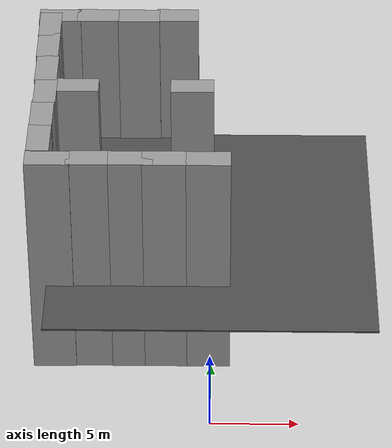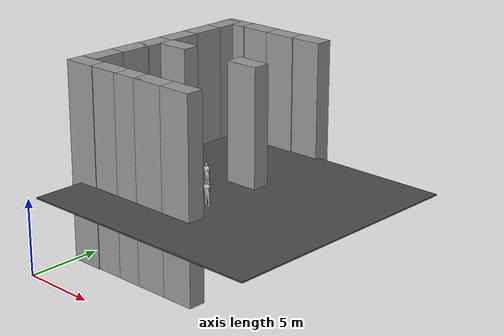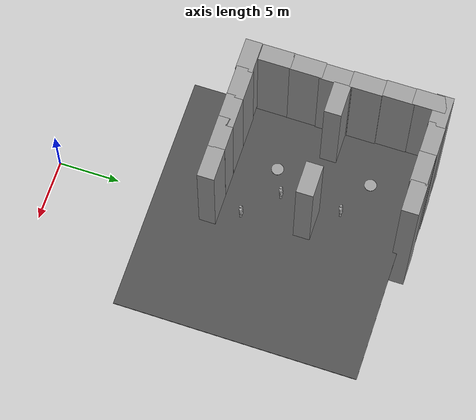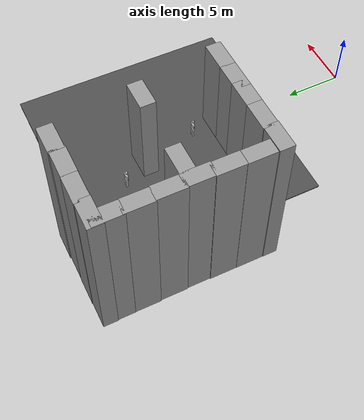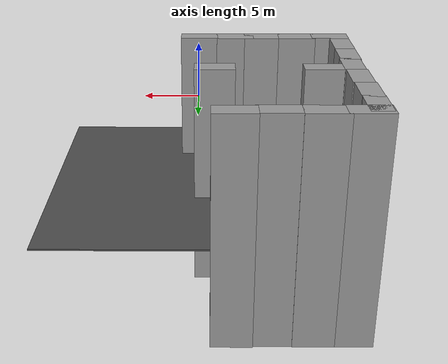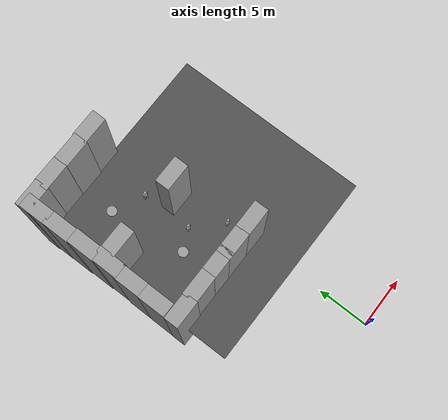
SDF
<sdf version="1.6">
 <model name="indoor_2">
  <link name="link_0_clone_2_clone_1_clone">
   <pose>-4.81876 16.9154 0.5 0 -0 0</pose>
   <inertial>
    <mass>0.0318769</mass>
    <inertia>
     <ixx>0.00199501</ixx>
     <ixy>0</ixy>
     <ixz>0</ixz>
     <iyy>0.00199501</iyy>
     <iyz>0</iyz>
     <izz>0.00398461</izz>
    </inertia>
   </inertial>
   <visual name="visual">
    <geometry><cylinder><radius>0.5</radius><length>0.0318771</length></cylinder></geometry>
    <material>
     <lighting>1</lighting>
     <script><uri>file://media/materials/scripts/gazebo.material</uri><name>Gazebo/Grey</name></script>
     <ambient>0.3 0.3 0.3 1</ambient>
     <diffuse>0.7 0.7 0.7 1</diffuse>
     <specular>0.01 0.01 0.01 1</specular>
     <emissive>0 0 0 1</emissive>
     <shader type="pixel"/>
    </material>
   </visual>
   <collision name="collision">
    <geometry><cylinder><radius>0.5</radius><length>0.031877</length></cylinder></geometry>
    <surface>
     <friction>
      <ode><mu>1</mu><mu2>1</mu2><fdir1>0 0 0</fdir1><slip1>0</slip1><slip2>0</slip2></ode>
      <torsional>
       <coefficient>1</coefficient>
       <patch_radius>0</patch_radius>
       <surface_radius>0</surface_radius>
       <use_patch_radius>1</use_patch_radius>
       <ode><slip>0</slip></ode>
      </torsional>
     </friction>
     <bounce><restitution_coefficient>0</restitution_coefficient><threshold>1e+06</threshold></bounce>
     <contact>
      <collide_without_contact>0</collide_without_contact>
      <collide_without_contact_bitmask>1</collide_without_contact_bitmask>
      <collide_bitmask>1</collide_bitmask>
      <ode>
       <soft_cfm>0</soft_cfm>
       <soft_erp>0.2</soft_erp>
       <kp>1e+13</kp>
       <kd>1</kd>
       <max_vel>0.01</max_vel>
       <min_depth>0</min_depth>
      </ode>
      <bullet>
       <split_impulse>1</split_impulse>
       <split_impulse_penetration_threshold>-0.01</split_impulse_penetration_threshold>
       <soft_cfm>0</soft_cfm>
       <soft_erp>0.2</soft_erp>
       <kp>1e+13</kp>
       <kd>1</kd>
      </bullet>
     </contact>
    </surface>
   </collision>
  </link>
  <link name="link_0_clone_2_clone_3_clone">
   <pose>-5.81876 24.4307 0.5 0 -0 0</pose>
   <inertial>
    <mass>0.0318769</mass>
    <inertia>
     <ixx>0.00199501</ixx>
     <ixy>0</ixy>
     <ixz>0</ixz>
     <iyy>0.00199501</iyy>
     <iyz>0</iyz>
     <izz>0.00398461</izz>
    </inertia>
   </inertial>
   <visual name="visual">
    <geometry><cylinder><radius>0.5</radius><length>0.0318771</length></cylinder></geometry>
    <material>
     <lighting>1</lighting>
     <script><uri>file://media/materials/scripts/gazebo.material</uri><name>Gazebo/Grey</name></script>
     <ambient>0.3 0.3 0.3 1</ambient>
     <diffuse>0.7 0.7 0.7 1</diffuse>
     <specular>0.01 0.01 0.01 1</specular>
     <emissive>0 0 0 1</emissive>
     <shader type="pixel"/>
    </material>
   </visual>
   <collision name="collision">
    <geometry><cylinder><radius>0.5</radius><length>0.031877</length></cylinder></geometry>
    <surface>
     <friction>
      <ode><mu>1</mu><mu2>1</mu2><fdir1>0 0 0</fdir1><slip1>0</slip1><slip2>0</slip2></ode>
      <torsional>
       <coefficient>1</coefficient>
       <patch_radius>0</patch_radius>
       <surface_radius>0</surface_radius>
       <use_patch_radius>1</use_patch_radius>
       <ode><slip>0</slip></ode>
      </torsional>
     </friction>
     <bounce><restitution_coefficient>0</restitution_coefficient><threshold>1e+06</threshold></bounce>
     <contact>
      <collide_without_contact>0</collide_without_contact>
      <collide_without_contact_bitmask>1</collide_without_contact_bitmask>
      <collide_bitmask>1</collide_bitmask>
      <ode>
       <soft_cfm>0</soft_cfm>
       <soft_erp>0.2</soft_erp>
       <kp>1e+13</kp>
       <kd>1</kd>
       <max_vel>0.01</max_vel>
       <min_depth>0</min_depth>
      </ode>
      <bullet>
       <split_impulse>1</split_impulse>
       <split_impulse_penetration_threshold>-0.01</split_impulse_penetration_threshold>
       <soft_cfm>0</soft_cfm>
       <soft_erp>0.2</soft_erp>
       <kp>1e+13</kp>
       <kd>1</kd>
      </bullet>
     </contact>
    </surface>
   </collision>
  </link>
  <link name="link_clone_16_clone">
   <pose>-10.321 14.9154 1.4 0 -0 0</pose>
   <inertial>
    <inertia><ixx>nan</ixx><ixy>0</ixy><ixz>0</ixz><iyy>nan</iyy><iyz>0</iyz><izz>nan</izz></inertia>
    <mass>0</mass>
   </inertial>
   <visual name="visual">
    <cast_shadows>0</cast_shadows>
    <geometry><box><size>1.37568 2.64508 15.4314</size></box></geometry>
    <material>
     <script>
      <uri>model://grey_wall/materials/scripts</uri>
      <uri>model://grey_wall/materials/textures</uri>
      <name>vrc/grey_wall</name>
     </script>
     <ambient>1 1 1 1</ambient>
     <diffuse>1 1 1 1</diffuse>
     <specular>0 0 0 1</specular>
     <emissive>0 0 0 1</emissive>
     <shader type="pixel"/>
    </material>
   </visual>
   <collision name="collision">
    <geometry><box><size>1.37568 2.64508 15.4314</size></box></geometry>
    <surface>
     <friction>
      <ode><mu>1</mu><mu2>1</mu2><fdir1>0 0 0</fdir1><slip1>0</slip1><slip2>0</slip2></ode>
      <torsional>
       <coefficient>1</coefficient>
       <patch_radius>0</patch_radius>
       <surface_radius>0</surface_radius>
       <use_patch_radius>1</use_patch_radius>
       <ode><slip>0</slip></ode>
      </torsional>
     </friction>
     <bounce><restitution_coefficient>0</restitution_coefficient><threshold>1e+06</threshold></bounce>
     <contact>
      <collide_without_contact>0</collide_without_contact>
      <collide_without_contact_bitmask>1</collide_without_contact_bitmask>
      <collide_bitmask>1</collide_bitmask>
      <ode>
       <soft_cfm>0</soft_cfm>
       <soft_erp>0.2</soft_erp>
       <kp>1e+13</kp>
       <kd>1</kd>
       <max_vel>0.01</max_vel>
       <min_depth>0</min_depth>
      </ode>
      <bullet>
       <split_impulse>1</split_impulse>
       <split_impulse_penetration_threshold>-0.01</split_impulse_penetration_threshold>
       <soft_cfm>0</soft_cfm>
       <soft_erp>0.2</soft_erp>
       <kp>1e+13</kp>
       <kd>1</kd>
      </bullet>
     </contact>
    </surface>
   </collision>
  </link>
  <link name="link_clone_16_clone_0">
   <pose>-10.3044 17.4883 1.4 0 -0 0</pose>
   <inertial>
    <inertia><ixx>nan</ixx><ixy>0</ixy><ixz>0</ixz><iyy>nan</iyy><iyz>0</iyz><izz>nan</izz></inertia>
    <mass>0</mass>
   </inertial>
   <visual name="visual">
    <cast_shadows>0</cast_shadows>
    <geometry><box><size>1.37568 2.64508 15.4314</size></box></geometry>
    <material>
     <script>
      <uri>model://grey_wall/materials/scripts</uri>
      <uri>model://grey_wall/materials/textures</uri>
      <name>vrc/grey_wall</name>
     </script>
     <ambient>1 1 1 1</ambient>
     <diffuse>1 1 1 1</diffuse>
     <specular>0 0 0 1</specular>
     <emissive>0 0 0 1</emissive>
     <shader type="pixel"/>
    </material>
   </visual>
   <collision name="collision">
    <geometry><box><size>1.37568 2.64508 15.4314</size></box></geometry>
    <surface>
     <friction>
      <ode><mu>1</mu><mu2>1</mu2><fdir1>0 0 0</fdir1><slip1>0</slip1><slip2>0</slip2></ode>
      <torsional>
       <coefficient>1</coefficient>
       <patch_radius>0</patch_radius>
       <surface_radius>0</surface_radius>
       <use_patch_radius>1</use_patch_radius>
       <ode><slip>0</slip></ode>
      </torsional>
     </friction>
     <bounce><restitution_coefficient>0</restitution_coefficient><threshold>1e+06</threshold></bounce>
     <contact>
      <collide_without_contact>0</collide_without_contact>
      <collide_without_contact_bitmask>1</collide_without_contact_bitmask>
      <collide_bitmask>1</collide_bitmask>
      <ode>
       <soft_cfm>0</soft_cfm>
       <soft_erp>0.2</soft_erp>
       <kp>1e+13</kp>
       <kd>1</kd>
       <max_vel>0.01</max_vel>
       <min_depth>0</min_depth>
      </ode>
      <bullet>
       <split_impulse>1</split_impulse>
       <split_impulse_penetration_threshold>-0.01</split_impulse_penetration_threshold>
       <soft_cfm>0</soft_cfm>
       <soft_erp>0.2</soft_erp>
       <kp>1e+13</kp>
       <kd>1</kd>
      </bullet>
     </contact>
    </surface>
   </collision>
  </link>
  <link name="link_clone_16_clone_0_clone">
   <pose>-10.2408 19.9154 1.4 0 -0 0</pose>
   <inertial>
    <inertia><ixx>nan</ixx><ixy>0</ixy><ixz>0</ixz><iyy>nan</iyy><iyz>0</iyz><izz>nan</izz></inertia>
    <mass>0</mass>
   </inertial>
   <visual name="visual">
    <cast_shadows>0</cast_shadows>
    <geometry><box><size>1.37568 2.64508 15.4314</size></box></geometry>
    <material>
     <script>
      <uri>model://grey_wall/materials/scripts</uri>
      <uri>model://grey_wall/materials/textures</uri>
      <name>vrc/grey_wall</name>
     </script>
     <ambient>1 1 1 1</ambient>
     <diffuse>1 1 1 1</diffuse>
     <specular>0 0 0 1</specular>
     <emissive>0 0 0 1</emissive>
     <shader type="pixel"/>
    </material>
   </visual>
   <collision name="collision">
    <geometry><box><size>1.37568 2.64508 15.4314</size></box></geometry>
    <surface>
     <friction>
      <ode><mu>1</mu><mu2>1</mu2><fdir1>0 0 0</fdir1><slip1>0</slip1><slip2>0</slip2></ode>
      <torsional>
       <coefficient>1</coefficient>
       <patch_radius>0</patch_radius>
       <surface_radius>0</surface_radius>
       <use_patch_radius>1</use_patch_radius>
       <ode><slip>0</slip></ode>
      </torsional>
     </friction>
     <bounce><restitution_coefficient>0</restitution_coefficient><threshold>1e+06</threshold></bounce>
     <contact>
      <collide_without_contact>0</collide_without_contact>
      <collide_without_contact_bitmask>1</collide_without_contact_bitmask>
      <collide_bitmask>1</collide_bitmask>
      <ode>
       <soft_cfm>0</soft_cfm>
       <soft_erp>0.2</soft_erp>
       <kp>1e+13</kp>
       <kd>1</kd>
       <max_vel>0.01</max_vel>
       <min_depth>0</min_depth>
      </ode>
      <bullet>
       <split_impulse>1</split_impulse>
       <split_impulse_penetration_threshold>-0.01</split_impulse_penetration_threshold>
       <soft_cfm>0</soft_cfm>
       <soft_erp>0.2</soft_erp>
       <kp>1e+13</kp>
       <kd>1</kd>
      </bullet>
     </contact>
    </surface>
   </collision>
  </link>
  <link name="link_clone_16_clone_0_clone_clone">
   <pose>-10.3026 22.3311 1.4 0 -0 0</pose>
   <inertial>
    <inertia><ixx>nan</ixx><ixy>0</ixy><ixz>0</ixz><iyy>nan</iyy><iyz>0</iyz><izz>nan</izz></inertia>
    <mass>0</mass>
   </inertial>
   <visual name="visual">
    <cast_shadows>0</cast_shadows>
    <geometry><box><size>1.37568 2.64508 15.4314</size></box></geometry>
    <material>
     <script>
      <uri>model://grey_wall/materials/scripts</uri>
      <uri>model://grey_wall/materials/textures</uri>
      <name>vrc/grey_wall</name>
     </script>
     <ambient>1 1 1 1</ambient>
     <diffuse>1 1 1 1</diffuse>
     <specular>0 0 0 1</specular>
     <emissive>0 0 0 1</emissive>
     <shader type="pixel"/>
    </material>
   </visual>
   <collision name="collision">
    <geometry><box><size>1.37568 2.64508 15.4314</size></box></geometry>
    <surface>
     <friction>
      <ode><mu>1</mu><mu2>1</mu2><fdir1>0 0 0</fdir1><slip1>0</slip1><slip2>0</slip2></ode>
      <torsional>
       <coefficient>1</coefficient>
       <patch_radius>0</patch_radius>
       <surface_radius>0</surface_radius>
       <use_patch_radius>1</use_patch_radius>
       <ode><slip>0</slip></ode>
      </torsional>
     </friction>
     <bounce><restitution_coefficient>0</restitution_coefficient><threshold>1e+06</threshold></bounce>
     <contact>
      <collide_without_contact>0</collide_without_contact>
      <collide_without_contact_bitmask>1</collide_without_contact_bitmask>
      <collide_bitmask>1</collide_bitmask>
      <ode>
       <soft_cfm>0</soft_cfm>
       <soft_erp>0.2</soft_erp>
       <kp>1e+13</kp>
       <kd>1</kd>
       <max_vel>0.01</max_vel>
       <min_depth>0</min_depth>
      </ode>
      <bullet>
       <split_impulse>1</split_impulse>
       <split_impulse_penetration_threshold>-0.01</split_impulse_penetration_threshold>
       <soft_cfm>0</soft_cfm>
       <soft_erp>0.2</soft_erp>
       <kp>1e+13</kp>
       <kd>1</kd>
      </bullet>
     </contact>
    </surface>
   </collision>
  </link>
  <link name="link_clone_16_clone_0_clone_clone_0">
   <pose>-10.3689 24.9154 1.4 0 -0 0</pose>
   <inertial>
    <inertia><ixx>nan</ixx><ixy>0</ixy><ixz>0</ixz><iyy>nan</iyy><iyz>0</iyz><izz>nan</izz></inertia>
    <mass>0</mass>
   </inertial>
   <visual name="visual">
    <cast_shadows>0</cast_shadows>
    <geometry><box><size>1.37568 2.64508 15.4314</size></box></geometry>
    <material>
     <script>
      <uri>model://grey_wall/materials/scripts</uri>
      <uri>model://grey_wall/materials/textures</uri>
      <name>vrc/grey_wall</name>
     </script>
     <ambient>1 1 1 1</ambient>
     <diffuse>1 1 1 1</diffuse>
     <specular>0 0 0 1</specular>
     <emissive>0 0 0 1</emissive>
     <shader type="pixel"/>
    </material>
   </visual>
   <collision name="collision">
    <geometry><box><size>1.37568 2.64508 15.4314</size></box></geometry>
    <surface>
     <friction>
      <ode><mu>1</mu><mu2>1</mu2><fdir1>0 0 0</fdir1><slip1>0</slip1><slip2>0</slip2></ode>
      <torsional>
       <coefficient>1</coefficient>
       <patch_radius>0</patch_radius>
       <surface_radius>0</surface_radius>
       <use_patch_radius>1</use_patch_radius>
       <ode><slip>0</slip></ode>
      </torsional>
     </friction>
     <bounce><restitution_coefficient>0</restitution_coefficient><threshold>1e+06</threshold></bounce>
     <contact>
      <collide_without_contact>0</collide_without_contact>
      <collide_without_contact_bitmask>1</collide_without_contact_bitmask>
      <collide_bitmask>1</collide_bitmask>
      <ode>
       <soft_cfm>0</soft_cfm>
       <soft_erp>0.2</soft_erp>
       <kp>1e+13</kp>
       <kd>1</kd>
       <max_vel>0.01</max_vel>
       <min_depth>0</min_depth>
      </ode>
      <bullet>
       <split_impulse>1</split_impulse>
       <split_impulse_penetration_threshold>-0.01</split_impulse_penetration_threshold>
       <soft_cfm>0</soft_cfm>
       <soft_erp>0.2</soft_erp>
       <kp>1e+13</kp>
       <kd>1</kd>
      </bullet>
     </contact>
    </surface>
   </collision>
  </link>
  <link name="link_clone_16_clone_0_clone_clone_1">
   <pose>-10.3943 27.342 1.4 0 -0 0</pose>
   <inertial>
    <inertia><ixx>nan</ixx><ixy>0</ixy><ixz>0</ixz><iyy>nan</iyy><iyz>0</iyz><izz>nan</izz></inertia>
    <mass>0</mass>
   </inertial>
   <visual name="visual">
    <cast_shadows>0</cast_shadows>
    <geometry><box><size>1.37568 2.64508 15.4314</size></box></geometry>
    <material>
     <script>
      <uri>model://grey_wall/materials/scripts</uri>
      <uri>model://grey_wall/materials/textures</uri>
      <name>vrc/grey_wall</name>
     </script>
     <ambient>1 1 1 1</ambient>
     <diffuse>1 1 1 1</diffuse>
     <specular>0 0 0 1</specular>
     <emissive>0 0 0 1</emissive>
     <shader type="pixel"/>
    </material>
   </visual>
   <collision name="collision">
    <geometry><box><size>1.37568 2.64508 15.4314</size></box></geometry>
    <surface>
     <friction>
      <ode><mu>1</mu><mu2>1</mu2><fdir1>0 0 0</fdir1><slip1>0</slip1><slip2>0</slip2></ode>
      <torsional>
       <coefficient>1</coefficient>
       <patch_radius>0</patch_radius>
       <surface_radius>0</surface_radius>
       <use_patch_radius>1</use_patch_radius>
       <ode><slip>0</slip></ode>
      </torsional>
     </friction>
     <bounce><restitution_coefficient>0</restitution_coefficient><threshold>1e+06</threshold></bounce>
     <contact>
      <collide_without_contact>0</collide_without_contact>
      <collide_without_contact_bitmask>1</collide_without_contact_bitmask>
      <collide_bitmask>1</collide_bitmask>
      <ode>
       <soft_cfm>0</soft_cfm>
       <soft_erp>0.2</soft_erp>
       <kp>1e+13</kp>
       <kd>1</kd>
       <max_vel>0.01</max_vel>
       <min_depth>0</min_depth>
      </ode>
      <bullet>
       <split_impulse>1</split_impulse>
       <split_impulse_penetration_threshold>-0.01</split_impulse_penetration_threshold>
       <soft_cfm>0</soft_cfm>
       <soft_erp>0.2</soft_erp>
       <kp>1e+13</kp>
       <kd>1</kd>
      </bullet>
     </contact>
    </surface>
   </collision>
  </link>
  <link name="link_clone_17">
   <pose>-9.71081 12.8568 1.4 0 0 -1.56938</pose>
   <inertial>
    <inertia><ixx>nan</ixx><ixy>0</ixy><ixz>0</ixz><iyy>nan</iyy><iyz>0</iyz><izz>nan</izz></inertia>
    <mass>0</mass>
   </inertial>
   <visual name="visual">
    <cast_shadows>0</cast_shadows>
    <geometry><box><size>1.37568 2.64508 15.4314</size></box></geometry>
    <material>
     <script>
      <uri>model://grey_wall/materials/scripts</uri>
      <uri>model://grey_wall/materials/textures</uri>
      <name>vrc/grey_wall</name>
     </script>
     <ambient>1 1 1 1</ambient>
     <diffuse>1 1 1 1</diffuse>
     <specular>0 0 0 1</specular>
     <emissive>0 0 0 1</emissive>
     <shader type="pixel"/>
    </material>
   </visual>
   <collision name="collision">
    <geometry><box><size>1.37568 2.64508 15.4314</size></box></geometry>
    <surface>
     <friction>
      <ode><mu>1</mu><mu2>1</mu2><fdir1>0 0 0</fdir1><slip1>0</slip1><slip2>0</slip2></ode>
      <torsional>
       <coefficient>1</coefficient>
       <patch_radius>0</patch_radius>
       <surface_radius>0</surface_radius>
       <use_patch_radius>1</use_patch_radius>
       <ode><slip>0</slip></ode>
      </torsional>
     </friction>
     <bounce><restitution_coefficient>0</restitution_coefficient><threshold>1e+06</threshold></bounce>
     <contact>
      <collide_without_contact>0</collide_without_contact>
      <collide_without_contact_bitmask>1</collide_without_contact_bitmask>
      <collide_bitmask>1</collide_bitmask>
      <ode>
       <soft_cfm>0</soft_cfm>
       <soft_erp>0.2</soft_erp>
       <kp>1e+13</kp>
       <kd>1</kd>
       <max_vel>0.01</max_vel>
       <min_depth>0</min_depth>
      </ode>
      <bullet>
       <split_impulse>1</split_impulse>
       <split_impulse_penetration_threshold>-0.01</split_impulse_penetration_threshold>
       <soft_cfm>0</soft_cfm>
       <soft_erp>0.2</soft_erp>
       <kp>1e+13</kp>
       <kd>1</kd>
      </bullet>
     </contact>
    </surface>
   </collision>
  </link>
  <link name="link_clone_17_clone">
   <pose>-7.29039 12.9154 1.4 0 0 -1.56938</pose>
   <inertial>
    <inertia><ixx>nan</ixx><ixy>0</ixy><ixz>0</ixz><iyy>nan</iyy><iyz>0</iyz><izz>nan</izz></inertia>
    <mass>0</mass>
   </inertial>
   <visual name="visual">
    <cast_shadows>0</cast_shadows>
    <geometry><box><size>1.37568 2.64508 15.4314</size></box></geometry>
    <material>
     <script>
      <uri>model://grey_wall/materials/scripts</uri>
      <uri>model://grey_wall/materials/textures</uri>
      <name>vrc/grey_wall</name>
     </script>
     <ambient>1 1 1 1</ambient>
     <diffuse>1 1 1 1</diffuse>
     <specular>0 0 0 1</specular>
     <emissive>0 0 0 1</emissive>
     <shader type="pixel"/>
    </material>
   </visual>
   <collision name="collision">
    <geometry><box><size>1.37568 2.64508 15.4314</size></box></geometry>
    <surface>
     <friction>
      <ode><mu>1</mu><mu2>1</mu2><fdir1>0 0 0</fdir1><slip1>0</slip1><slip2>0</slip2></ode>
      <torsional>
       <coefficient>1</coefficient>
       <patch_radius>0</patch_radius>
       <surface_radius>0</surface_radius>
       <use_patch_radius>1</use_patch_radius>
       <ode><slip>0</slip></ode>
      </torsional>
     </friction>
     <bounce><restitution_coefficient>0</restitution_coefficient><threshold>1e+06</threshold></bounce>
     <contact>
      <collide_without_contact>0</collide_without_contact>
      <collide_without_contact_bitmask>1</collide_without_contact_bitmask>
      <collide_bitmask>1</collide_bitmask>
      <ode>
       <soft_cfm>0</soft_cfm>
       <soft_erp>0.2</soft_erp>
       <kp>1e+13</kp>
       <kd>1</kd>
       <max_vel>0.01</max_vel>
       <min_depth>0</min_depth>
      </ode>
      <bullet>
       <split_impulse>1</split_impulse>
       <split_impulse_penetration_threshold>-0.01</split_impulse_penetration_threshold>
       <soft_cfm>0</soft_cfm>
       <soft_erp>0.2</soft_erp>
       <kp>1e+13</kp>
       <kd>1</kd>
      </bullet>
     </contact>
    </surface>
   </collision>
  </link>
  <link name="link_clone_17_clone_clone">
   <pose>-2.81876 12.9154 1.4 0 0 -1.56938</pose>
   <inertial>
    <inertia><ixx>nan</ixx><ixy>0</ixy><ixz>0</ixz><iyy>nan</iyy><iyz>0</iyz><izz>nan</izz></inertia>
    <mass>0</mass>
   </inertial>
   <visual name="visual">
    <cast_shadows>0</cast_shadows>
    <geometry><box><size>1.37568 2.64508 15.4314</size></box></geometry>
    <material>
     <script>
      <uri>model://grey_wall/materials/scripts</uri>
      <uri>model://grey_wall/materials/textures</uri>
      <name>vrc/grey_wall</name>
     </script>
     <ambient>1 1 1 1</ambient>
     <diffuse>1 1 1 1</diffuse>
     <specular>0 0 0 1</specular>
     <emissive>0 0 0 1</emissive>
     <shader type="pixel"/>
    </material>
   </visual>
   <collision name="collision">
    <geometry><box><size>1.37568 2.64508 15.4314</size></box></geometry>
    <surface>
     <friction>
      <ode><mu>1</mu><mu2>1</mu2><fdir1>0 0 0</fdir1><slip1>0</slip1><slip2>0</slip2></ode>
      <torsional>
       <coefficient>1</coefficient>
       <patch_radius>0</patch_radius>
       <surface_radius>0</surface_radius>
       <use_patch_radius>1</use_patch_radius>
       <ode><slip>0</slip></ode>
      </torsional>
     </friction>
     <bounce><restitution_coefficient>0</restitution_coefficient><threshold>1e+06</threshold></bounce>
     <contact>
      <collide_without_contact>0</collide_without_contact>
      <collide_without_contact_bitmask>1</collide_without_contact_bitmask>
      <collide_bitmask>1</collide_bitmask>
      <ode>
       <soft_cfm>0</soft_cfm>
       <soft_erp>0.2</soft_erp>
       <kp>1e+13</kp>
       <kd>1</kd>
       <max_vel>0.01</max_vel>
       <min_depth>0</min_depth>
      </ode>
      <bullet>
       <split_impulse>1</split_impulse>
       <split_impulse_penetration_threshold>-0.01</split_impulse_penetration_threshold>
       <soft_cfm>0</soft_cfm>
       <soft_erp>0.2</soft_erp>
       <kp>1e+13</kp>
       <kd>1</kd>
      </bullet>
     </contact>
    </surface>
   </collision>
  </link>
  <link name="link_clone_17_clone_clone_0">
   <pose>-0.225215 12.9154 1.4 0 0 -1.56938</pose>
   <inertial>
    <inertia><ixx>nan</ixx><ixy>0</ixy><ixz>0</ixz><iyy>nan</iyy><iyz>0</iyz><izz>nan</izz></inertia>
    <mass>0</mass>
   </inertial>
   <visual name="visual">
    <cast_shadows>0</cast_shadows>
    <geometry><box><size>1.37568 2.64508 15.4314</size></box></geometry>
    <material>
     <script>
      <uri>model://grey_wall/materials/scripts</uri>
      <uri>model://grey_wall/materials/textures</uri>
      <name>vrc/grey_wall</name>
     </script>
     <ambient>1 1 1 1</ambient>
     <diffuse>1 1 1 1</diffuse>
     <specular>0 0 0 1</specular>
     <emissive>0 0 0 1</emissive>
     <shader type="pixel"/>
    </material>
   </visual>
   <collision name="collision">
    <geometry><box><size>1.37568 2.64508 15.4314</size></box></geometry>
    <surface>
     <friction>
      <ode><mu>1</mu><mu2>1</mu2><fdir1>0 0 0</fdir1><slip1>0</slip1><slip2>0</slip2></ode>
      <torsional>
       <coefficient>1</coefficient>
       <patch_radius>0</patch_radius>
       <surface_radius>0</surface_radius>
       <use_patch_radius>1</use_patch_radius>
       <ode><slip>0</slip></ode>
      </torsional>
     </friction>
     <bounce><restitution_coefficient>0</restitution_coefficient><threshold>1e+06</threshold></bounce>
     <contact>
      <collide_without_contact>0</collide_without_contact>
      <collide_without_contact_bitmask>1</collide_without_contact_bitmask>
      <collide_bitmask>1</collide_bitmask>
      <ode>
       <soft_cfm>0</soft_cfm>
       <soft_erp>0.2</soft_erp>
       <kp>1e+13</kp>
       <kd>1</kd>
       <max_vel>0.01</max_vel>
       <min_depth>0</min_depth>
      </ode>
      <bullet>
       <split_impulse>1</split_impulse>
       <split_impulse_penetration_threshold>-0.01</split_impulse_penetration_threshold>
       <soft_cfm>0</soft_cfm>
       <soft_erp>0.2</soft_erp>
       <kp>1e+13</kp>
       <kd>1</kd>
      </bullet>
     </contact>
    </surface>
   </collision>
  </link>
  <link name="link_clone_17_clone_clone_0_clone_0_clone_4">
   <pose>-2.34657 28.4334 1.4 0 0 -1.56938</pose>
   <inertial>
    <inertia><ixx>nan</ixx><ixy>0</ixy><ixz>0</ixz><iyy>nan</iyy><iyz>0</iyz><izz>nan</izz></inertia>
    <mass>0</mass>
   </inertial>
   <visual name="visual">
    <cast_shadows>0</cast_shadows>
    <geometry><box><size>1.37568 2.64508 15.4314</size></box></geometry>
    <material>
     <script>
      <uri>model://grey_wall/materials/scripts</uri>
      <uri>model://grey_wall/materials/textures</uri>
      <name>vrc/grey_wall</name>
     </script>
     <ambient>1 1 1 1</ambient>
     <diffuse>1 1 1 1</diffuse>
     <specular>0 0 0 1</specular>
     <emissive>0 0 0 1</emissive>
     <shader type="pixel"/>
    </material>
   </visual>
   <collision name="collision">
    <geometry><box><size>1.37568 2.64508 15.4314</size></box></geometry>
    <surface>
     <friction>
      <ode><mu>1</mu><mu2>1</mu2><fdir1>0 0 0</fdir1><slip1>0</slip1><slip2>0</slip2></ode>
      <torsional>
       <coefficient>1</coefficient>
       <patch_radius>0</patch_radius>
       <surface_radius>0</surface_radius>
       <use_patch_radius>1</use_patch_radius>
       <ode><slip>0</slip></ode>
      </torsional>
     </friction>
     <bounce><restitution_coefficient>0</restitution_coefficient><threshold>1e+06</threshold></bounce>
     <contact>
      <collide_without_contact>0</collide_without_contact>
      <collide_without_contact_bitmask>1</collide_without_contact_bitmask>
      <collide_bitmask>1</collide_bitmask>
      <ode>
       <soft_cfm>0</soft_cfm>
       <soft_erp>0.2</soft_erp>
       <kp>1e+13</kp>
       <kd>1</kd>
       <max_vel>0.01</max_vel>
       <min_depth>0</min_depth>
      </ode>
      <bullet>
       <split_impulse>1</split_impulse>
       <split_impulse_penetration_threshold>-0.01</split_impulse_penetration_threshold>
       <soft_cfm>0</soft_cfm>
       <soft_erp>0.2</soft_erp>
       <kp>1e+13</kp>
       <kd>1</kd>
      </bullet>
     </contact>
    </surface>
   </collision>
  </link>
  <link name="link_clone_17_clone_clone_0_clone_0_clone_5">
   <pose>-4.81876 28.3536 1.4 0 0 -1.56938</pose>
   <inertial>
    <inertia><ixx>nan</ixx><ixy>0</ixy><ixz>0</ixz><iyy>nan</iyy><iyz>0</iyz><izz>nan</izz></inertia>
    <mass>0</mass>
   </inertial>
   <visual name="visual">
    <cast_shadows>0</cast_shadows>
    <geometry><box><size>1.37568 2.64508 15.4314</size></box></geometry>
    <material>
     <script>
      <uri>model://grey_wall/materials/scripts</uri>
      <uri>model://grey_wall/materials/textures</uri>
      <name>vrc/grey_wall</name>
     </script>
     <ambient>1 1 1 1</ambient>
     <diffuse>1 1 1 1</diffuse>
     <specular>0 0 0 1</specular>
     <emissive>0 0 0 1</emissive>
     <shader type="pixel"/>
    </material>
   </visual>
   <collision name="collision">
    <geometry><box><size>1.37568 2.64508 15.4314</size></box></geometry>
    <surface>
     <friction>
      <ode><mu>1</mu><mu2>1</mu2><fdir1>0 0 0</fdir1><slip1>0</slip1><slip2>0</slip2></ode>
      <torsional>
       <coefficient>1</coefficient>
       <patch_radius>0</patch_radius>
       <surface_radius>0</surface_radius>
       <use_patch_radius>1</use_patch_radius>
       <ode><slip>0</slip></ode>
      </torsional>
     </friction>
     <bounce><restitution_coefficient>0</restitution_coefficient><threshold>1e+06</threshold></bounce>
     <contact>
      <collide_without_contact>0</collide_without_contact>
      <collide_without_contact_bitmask>1</collide_without_contact_bitmask>
      <collide_bitmask>1</collide_bitmask>
      <ode>
       <soft_cfm>0</soft_cfm>
       <soft_erp>0.2</soft_erp>
       <kp>1e+13</kp>
       <kd>1</kd>
       <max_vel>0.01</max_vel>
       <min_depth>0</min_depth>
      </ode>
      <bullet>
       <split_impulse>1</split_impulse>
       <split_impulse_penetration_threshold>-0.01</split_impulse_penetration_threshold>
       <soft_cfm>0</soft_cfm>
       <soft_erp>0.2</soft_erp>
       <kp>1e+13</kp>
       <kd>1</kd>
      </bullet>
     </contact>
    </surface>
   </collision>
  </link>
  <link name="link_clone_17_clone_clone_0_clone_0_clone_6">
   <pose>-7.41512 28.3769 1.4 0 0 -1.56938</pose>
   <inertial>
    <inertia><ixx>nan</ixx><ixy>0</ixy><ixz>0</ixz><iyy>nan</iyy><iyz>0</iyz><izz>nan</izz></inertia>
    <mass>0</mass>
   </inertial>
   <visual name="visual">
    <cast_shadows>0</cast_shadows>
    <geometry><box><size>1.37568 2.64508 15.4314</size></box></geometry>
    <material>
     <script>
      <uri>model://grey_wall/materials/scripts</uri>
      <uri>model://grey_wall/materials/textures</uri>
      <name>vrc/grey_wall</name>
     </script>
     <ambient>1 1 1 1</ambient>
     <diffuse>1 1 1 1</diffuse>
     <specular>0 0 0 1</specular>
     <emissive>0 0 0 1</emissive>
     <shader type="pixel"/>
    </material>
   </visual>
   <collision name="collision">
    <geometry><box><size>1.37568 2.64508 15.4314</size></box></geometry>
    <surface>
     <friction>
      <ode><mu>1</mu><mu2>1</mu2><fdir1>0 0 0</fdir1><slip1>0</slip1><slip2>0</slip2></ode>
      <torsional>
       <coefficient>1</coefficient>
       <patch_radius>0</patch_radius>
       <surface_radius>0</surface_radius>
       <use_patch_radius>1</use_patch_radius>
       <ode><slip>0</slip></ode>
      </torsional>
     </friction>
     <bounce><restitution_coefficient>0</restitution_coefficient><threshold>1e+06</threshold></bounce>
     <contact>
      <collide_without_contact>0</collide_without_contact>
      <collide_without_contact_bitmask>1</collide_without_contact_bitmask>
      <collide_bitmask>1</collide_bitmask>
      <ode>
       <soft_cfm>0</soft_cfm>
       <soft_erp>0.2</soft_erp>
       <kp>1e+13</kp>
       <kd>1</kd>
       <max_vel>0.01</max_vel>
       <min_depth>0</min_depth>
      </ode>
      <bullet>
       <split_impulse>1</split_impulse>
       <split_impulse_penetration_threshold>-0.01</split_impulse_penetration_threshold>
       <soft_cfm>0</soft_cfm>
       <soft_erp>0.2</soft_erp>
       <kp>1e+13</kp>
       <kd>1</kd>
      </bullet>
     </contact>
    </surface>
   </collision>
  </link>
  <link name="link_clone_17_clone_clone_0_clone_0_clone_7">
   <pose>-9.81876 28.3388 1.4 0 0 -1.56938</pose>
   <inertial>
    <inertia><ixx>nan</ixx><ixy>0</ixy><ixz>0</ixz><iyy>nan</iyy><iyz>0</iyz><izz>nan</izz></inertia>
    <mass>0</mass>
   </inertial>
   <visual name="visual">
    <cast_shadows>0</cast_shadows>
    <geometry><box><size>1.37568 2.64508 15.4314</size></box></geometry>
    <material>
     <script>
      <uri>model://grey_wall/materials/scripts</uri>
      <uri>model://grey_wall/materials/textures</uri>
      <name>vrc/grey_wall</name>
     </script>
     <ambient>1 1 1 1</ambient>
     <diffuse>1 1 1 1</diffuse>
     <specular>0 0 0 1</specular>
     <emissive>0 0 0 1</emissive>
     <shader type="pixel"/>
    </material>
   </visual>
   <collision name="collision">
    <geometry><box><size>1.37568 2.64508 15.4314</size></box></geometry>
    <surface>
     <friction>
      <ode><mu>1</mu><mu2>1</mu2><fdir1>0 0 0</fdir1><slip1>0</slip1><slip2>0</slip2></ode>
      <torsional>
       <coefficient>1</coefficient>
       <patch_radius>0</patch_radius>
       <surface_radius>0</surface_radius>
       <use_patch_radius>1</use_patch_radius>
       <ode><slip>0</slip></ode>
      </torsional>
     </friction>
     <bounce><restitution_coefficient>0</restitution_coefficient><threshold>1e+06</threshold></bounce>
     <contact>
      <collide_without_contact>0</collide_without_contact>
      <collide_without_contact_bitmask>1</collide_without_contact_bitmask>
      <collide_bitmask>1</collide_bitmask>
      <ode>
       <soft_cfm>0</soft_cfm>
       <soft_erp>0.2</soft_erp>
       <kp>1e+13</kp>
       <kd>1</kd>
       <max_vel>0.01</max_vel>
       <min_depth>0</min_depth>
      </ode>
      <bullet>
       <split_impulse>1</split_impulse>
       <split_impulse_penetration_threshold>-0.01</split_impulse_penetration_threshold>
       <soft_cfm>0</soft_cfm>
       <soft_erp>0.2</soft_erp>
       <kp>1e+13</kp>
       <kd>1</kd>
      </bullet>
     </contact>
    </surface>
   </collision>
  </link>
  <link name="link_clone_17_clone_clone_0_clone_4_clone">
   <pose>-1.28613 20.4547 1.4 0 0 -1.56938</pose>
   <inertial>
    <inertia><ixx>nan</ixx><ixy>0</ixy><ixz>0</ixz><iyy>nan</iyy><iyz>0</iyz><izz>nan</izz></inertia>
    <mass>0</mass>
   </inertial>
   <visual name="visual">
    <cast_shadows>0</cast_shadows>
    <geometry><box><size>1.37568 2.64508 15.4314</size></box></geometry>
    <material>
     <script>
      <uri>model://grey_wall/materials/scripts</uri>
      <uri>model://grey_wall/materials/textures</uri>
      <name>vrc/grey_wall</name>
     </script>
     <ambient>1 1 1 1</ambient>
     <diffuse>1 1 1 1</diffuse>
     <specular>0 0 0 1</specular>
     <emissive>0 0 0 1</emissive>
     <shader type="pixel"/>
    </material>
   </visual>
   <collision name="collision">
    <geometry><box><size>1.37568 2.64508 15.4314</size></box></geometry>
    <surface>
     <friction>
      <ode><mu>1</mu><mu2>1</mu2><fdir1>0 0 0</fdir1><slip1>0</slip1><slip2>0</slip2></ode>
      <torsional>
       <coefficient>1</coefficient>
       <patch_radius>0</patch_radius>
       <surface_radius>0</surface_radius>
       <use_patch_radius>1</use_patch_radius>
       <ode><slip>0</slip></ode>
      </torsional>
     </friction>
     <bounce><restitution_coefficient>0</restitution_coefficient><threshold>1e+06</threshold></bounce>
     <contact>
      <collide_without_contact>0</collide_without_contact>
      <collide_without_contact_bitmask>1</collide_without_contact_bitmask>
      <collide_bitmask>1</collide_bitmask>
      <ode>
       <soft_cfm>0</soft_cfm>
       <soft_erp>0.2</soft_erp>
       <kp>1e+13</kp>
       <kd>1</kd>
       <max_vel>0.01</max_vel>
       <min_depth>0</min_depth>
      </ode>
      <bullet>
       <split_impulse>1</split_impulse>
       <split_impulse_penetration_threshold>-0.01</split_impulse_penetration_threshold>
       <soft_cfm>0</soft_cfm>
       <soft_erp>0.2</soft_erp>
       <kp>1e+13</kp>
       <kd>1</kd>
      </bullet>
     </contact>
    </surface>
   </collision>
  </link>
  <link name="link_clone_17_clone_clone_0_clone_4_clone_0_clone">
   <pose>-8.33385 20.4802 1.4 0 0 -1.56938</pose>
   <inertial>
    <inertia><ixx>nan</ixx><ixy>0</ixy><ixz>0</ixz><iyy>nan</iyy><iyz>0</iyz><izz>nan</izz></inertia>
    <mass>0</mass>
   </inertial>
   <visual name="visual">
    <cast_shadows>0</cast_shadows>
    <geometry><box><size>1.37568 2.64508 15.4314</size></box></geometry>
    <material>
     <script>
      <uri>model://grey_wall/materials/scripts</uri>
      <uri>model://grey_wall/materials/textures</uri>
      <name>vrc/grey_wall</name>
     </script>
     <ambient>1 1 1 1</ambient>
     <diffuse>1 1 1 1</diffuse>
     <specular>0 0 0 1</specular>
     <emissive>0 0 0 1</emissive>
     <shader type="pixel"/>
    </material>
   </visual>
   <collision name="collision">
    <geometry><box><size>1.37568 2.64508 15.4314</size></box></geometry>
    <surface>
     <friction>
      <ode><mu>1</mu><mu2>1</mu2><fdir1>0 0 0</fdir1><slip1>0</slip1><slip2>0</slip2></ode>
      <torsional>
       <coefficient>1</coefficient>
       <patch_radius>0</patch_radius>
       <surface_radius>0</surface_radius>
       <use_patch_radius>1</use_patch_radius>
       <ode><slip>0</slip></ode>
      </torsional>
     </friction>
     <bounce><restitution_coefficient>0</restitution_coefficient><threshold>1e+06</threshold></bounce>
     <contact>
      <collide_without_contact>0</collide_without_contact>
      <collide_without_contact_bitmask>1</collide_without_contact_bitmask>
      <collide_bitmask>1</collide_bitmask>
      <ode>
       <soft_cfm>0</soft_cfm>
       <soft_erp>0.2</soft_erp>
       <kp>1e+13</kp>
       <kd>1</kd>
       <max_vel>0.01</max_vel>
       <min_depth>0</min_depth>
      </ode>
      <bullet>
       <split_impulse>1</split_impulse>
       <split_impulse_penetration_threshold>-0.01</split_impulse_penetration_threshold>
       <soft_cfm>0</soft_cfm>
       <soft_erp>0.2</soft_erp>
       <kp>1e+13</kp>
       <kd>1</kd>
      </bullet>
     </contact>
    </surface>
   </collision>
  </link>
  <link name="link_clone_17_clone_clone_clone">
   <pose>-4.81876 12.9154 1.4 0 0 -1.56938</pose>
   <inertial>
    <inertia><ixx>nan</ixx><ixy>0</ixy><ixz>0</ixz><iyy>nan</iyy><iyz>0</iyz><izz>nan</izz></inertia>
    <mass>0</mass>
   </inertial>
   <visual name="visual">
    <cast_shadows>0</cast_shadows>
    <geometry><box><size>1.37568 2.64508 15.4314</size></box></geometry>
    <material>
     <script>
      <uri>model://grey_wall/materials/scripts</uri>
      <uri>model://grey_wall/materials/textures</uri>
      <name>vrc/grey_wall</name>
     </script>
     <ambient>1 1 1 1</ambient>
     <diffuse>1 1 1 1</diffuse>
     <specular>0 0 0 1</specular>
     <emissive>0 0 0 1</emissive>
     <shader type="pixel"/>
    </material>
   </visual>
   <collision name="collision">
    <geometry><box><size>1.37568 2.64508 15.4314</size></box></geometry>
    <surface>
     <friction>
      <ode><mu>1</mu><mu2>1</mu2><fdir1>0 0 0</fdir1><slip1>0</slip1><slip2>0</slip2></ode>
      <torsional>
       <coefficient>1</coefficient>
       <patch_radius>0</patch_radius>
       <surface_radius>0</surface_radius>
       <use_patch_radius>1</use_patch_radius>
       <ode><slip>0</slip></ode>
      </torsional>
     </friction>
     <bounce><restitution_coefficient>0</restitution_coefficient><threshold>1e+06</threshold></bounce>
     <contact>
      <collide_without_contact>0</collide_without_contact>
      <collide_without_contact_bitmask>1</collide_without_contact_bitmask>
      <collide_bitmask>1</collide_bitmask>
      <ode>
       <soft_cfm>0</soft_cfm>
       <soft_erp>0.2</soft_erp>
       <kp>1e+13</kp>
       <kd>1</kd>
       <max_vel>0.01</max_vel>
       <min_depth>0</min_depth>
      </ode>
      <bullet>
       <split_impulse>1</split_impulse>
       <split_impulse_penetration_threshold>-0.01</split_impulse_penetration_threshold>
       <soft_cfm>0</soft_cfm>
       <soft_erp>0.2</soft_erp>
       <kp>1e+13</kp>
       <kd>1</kd>
      </bullet>
     </contact>
    </surface>
   </collision>
  </link>
  <model name="asphalt_plane_0">
   <static>1</static>
   <link name="link">
    <collision name="collision"><geometry><box><size>20 20 0.1</size></box></geometry></collision>
    <visual name="visual">
     <cast_shadows>0</cast_shadows>
     <geometry><box><size>20 20 0.1</size></box></geometry>
     <material>
      <script>
       <uri>model://asphalt_plane/materials/scripts</uri>
       <uri>model://asphalt_plane/materials/textures</uri>
       <name>vrc/asphalt</name>
      </script>
     </material>
    </visual>
   </link>
   <pose>-0.062611 18.0956 0 0 -0 0</pose>
  </model>
  <model name="person_standing_clone_12">
   <link name="link">
    <inertial>
     <pose>0 -0.1 0.95 0 -0 0</pose>
     <mass>80</mass>
     <inertia><ixx>24.88</ixx><ixy>0</ixy><ixz>0</ixz><iyy>25.73</iyy><iyz>0</iyz><izz>2.48</izz></inertia>
    </inertial>
    <collision name="bottom">
     <pose>0 -0.1 0.01 0 -0 0</pose>
     <geometry><box><size>0.5 0.35 0.02</size></box></geometry>
    </collision>
    <collision name="person">
     <pose>0 0 0.02 0.04 -0 0</pose>
     <geometry><mesh><uri>model://person_standing/meshes/standing.dae</uri></mesh></geometry>
    </collision>
    <visual name="visual">
     <pose>0 0 0.02 0.04 -0 0</pose>
     <geometry><mesh><uri>model://person_standing/meshes/standing.dae</uri></mesh></geometry>
    </visual>
   </link>
   <pose>-0.274715 15.3871 0 0 -0 0</pose>
  </model>
  <model name="person_standing_clone_13">
   <link name="link">
    <inertial>
     <pose>0 -0.1 0.95 0 -0 0</pose>
     <mass>80</mass>
     <inertia><ixx>24.88</ixx><ixy>0</ixy><ixz>0</ixz><iyy>25.73</iyy><iyz>0</iyz><izz>2.48</izz></inertia>
    </inertial>
    <collision name="bottom">
     <pose>0 -0.1 0.01 0 -0 0</pose>
     <geometry><box><size>0.5 0.35 0.02</size></box></geometry>
    </collision>
    <collision name="person">
     <pose>0 0 0.02 0.04 -0 0</pose>
     <geometry><mesh><uri>model://person_standing/meshes/standing.dae</uri></mesh></geometry>
    </collision>
    <visual name="visual">
     <pose>0 0 0.02 0.04 -0 0</pose>
     <geometry><mesh><uri>model://person_standing/meshes/standing.dae</uri></mesh></geometry>
    </visual>
   </link>
   <pose>-2.81876 17.9154 0 0 -0 0</pose>
  </model>
  <model name="person_standing_clone_15">
   <link name="link">
    <inertial>
     <pose>0 -0.1 0.95 0 -0 0</pose>
     <mass>80</mass>
     <inertia><ixx>24.88</ixx><ixy>0</ixy><ixz>0</ixz><iyy>25.73</iyy><iyz>0</iyz><izz>2.48</izz></inertia>
    </inertial>
    <collision name="bottom">
     <pose>0 -0.1 0.01 0 -0 0</pose>
     <geometry><box><size>0.5 0.35 0.02</size></box></geometry>
    </collision>
    <collision name="person">
     <pose>0 0 0.02 0.04 -0 0</pose>
     <geometry><mesh><uri>model://person_standing/meshes/standing.dae</uri></mesh></geometry>
    </collision>
    <visual name="visual">
     <pose>0 0 0.02 0.04 -0 0</pose>
     <geometry><mesh><uri>model://person_standing/meshes/standing.dae</uri></mesh></geometry>
    </visual>
   </link>
   <pose>-2.81876 22.9154 0 0 -0 0</pose>
  </model>
  <static>1</static>
 </model>
</sdf>
